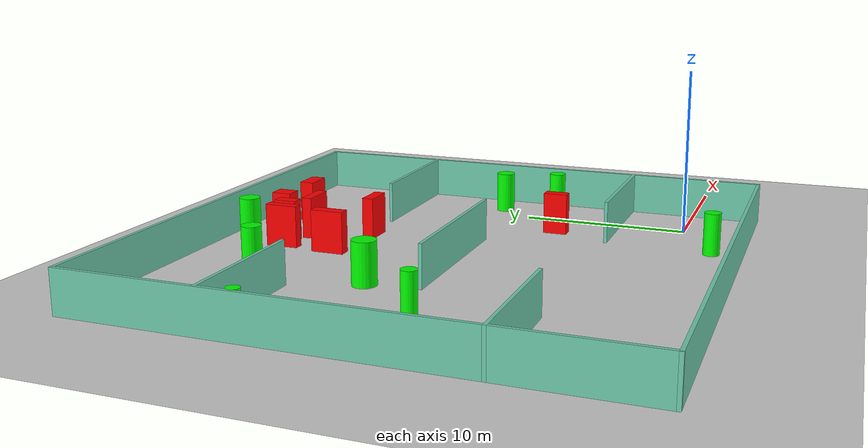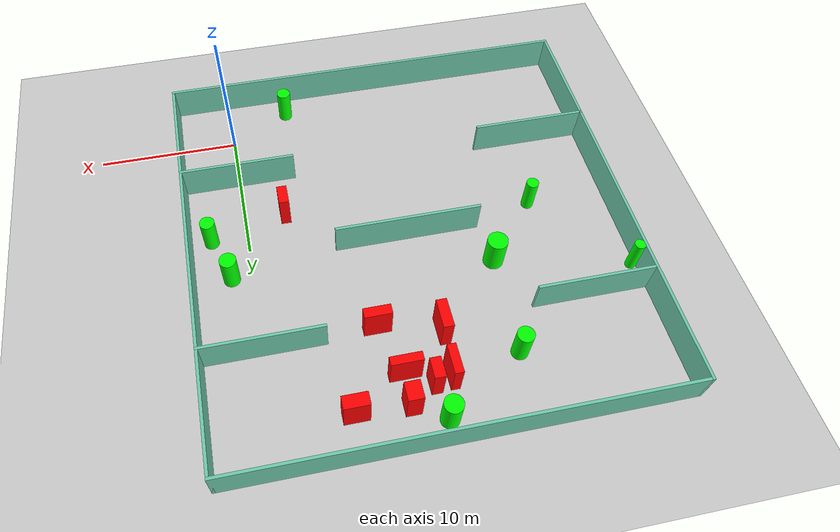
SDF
<sdf version="1.7">
 <world name="default">
  <light name="sun" type="directional">
   <pose>0 0 10 0 -0 0</pose>
   <diffuse>0.8 0.8 0.8 1</diffuse>
   <specular>0.2 0.2 0.2 1</specular>
   <attenuation>
    <range>1000</range>
    <constant>0.9</constant>
    <linear>0.01</linear>
    <quadratic>0.001</quadratic>
   </attenuation>
   <direction>-0.5 0.1 -0.9</direction>
   <spot><inner_angle>0</inner_angle><outer_angle>0</outer_angle><falloff>0</falloff></spot>
  </light>
  <model name="ground_plane">
   <static>1</static>
   <link name="link">
    <collision name="collision">
     <geometry><plane><normal>0 0 1</normal><size>100 100</size></plane></geometry>
     <surface>
      <contact><collide_bitmask>65535</collide_bitmask></contact>
      <friction><ode><mu>100</mu><mu2>50</mu2></ode></friction>
     </surface>
    </collision>
    <visual name="visual">
     <cast_shadows>0</cast_shadows>
     <geometry><plane><normal>0 0 1</normal><size>100 100</size></plane></geometry>
     <material>
      <script><uri>file://media/materials/scripts/gazebo.material</uri><name>Gazebo/Grey</name></script>
     </material>
    </visual>
   </link>
  </model>
  <gravity>0 0 -9.8</gravity>
  <magnetic_field>6e-06 2.3e-05 -4.2e-05</magnetic_field>
  <atmosphere type="adiabatic"/>
  <physics type="ode">
   <max_step_size>0.001</max_step_size>
   <real_time_factor>1</real_time_factor>
   <real_time_update_rate>1000</real_time_update_rate>
  </physics>
  <scene><ambient>0.4 0.4 0.4 1</ambient><background>0.7 0.7 0.7 1</background><shadows>1</shadows></scene>
  <spherical_coordinates>
   <surface_model>EARTH_WGS84</surface_model>
   <latitude_deg>0</latitude_deg>
   <longitude_deg>0</longitude_deg>
   <elevation>0</elevation>
   <heading_deg>0</heading_deg>
  </spherical_coordinates>
  <model name="my_base_walls">
   <link name="Wall_10">
    <collision name="Wall_10_Collision">
     <geometry><box><size>8.2 0.2 2.5</size></box></geometry>
     <pose>0 0 1.25 0 -0 0</pose>
    </collision>
    <visual name="Wall_10_Visual">
     <pose>0 0 1.25 0 -0 0</pose>
     <geometry><box><size>8.2 0.2 2.5</size></box></geometry>
     <material>
      <script><uri>file://media/materials/scripts/gazebo.material</uri><name>Gazebo/Grey</name></script>
      <ambient>0.435294 0.796078 0.67451 1</ambient>
     </material>
     <meta><layer>0</layer></meta>
    </visual>
    <pose>-11 -7 0 0 -0 0</pose>
   </link>
   <link name="Wall_12">
    <collision name="Wall_12_Collision">
     <geometry><box><size>8.2 0.2 2.5</size></box></geometry>
     <pose>0 0 1.25 0 -0 0</pose>
    </collision>
    <visual name="Wall_12_Visual">
     <pose>0 0 1.25 0 -0 0</pose>
     <geometry><box><size>8.2 0.2 2.5</size></box></geometry>
     <material>
      <script><uri>file://media/materials/scripts/gazebo.material</uri><name>Gazebo/Grey</name></script>
      <ambient>0.435294 0.796078 0.67451 1</ambient>
     </material>
     <meta><layer>0</layer></meta>
    </visual>
    <pose>-11 7 0 0 -0 0</pose>
   </link>
   <link name="Wall_14">
    <collision name="Wall_14_Collision">
     <geometry><box><size>8.2 0.2 2.5</size></box></geometry>
     <pose>0 0 1.25 0 -0 0</pose>
    </collision>
    <visual name="Wall_14_Visual">
     <pose>0 0 1.25 0 -0 0</pose>
     <geometry><box><size>8.2 0.2 2.5</size></box></geometry>
     <material>
      <script><uri>file://media/materials/scripts/gazebo.material</uri><name>Gazebo/Grey</name></script>
      <ambient>0.435294 0.796078 0.67451 1</ambient>
     </material>
     <meta><layer>0</layer></meta>
    </visual>
    <pose>11 7 0 0 -0 3.14159</pose>
   </link>
   <link name="Wall_16">
    <collision name="Wall_16_Collision">
     <geometry><box><size>10.2 0.2 2.5</size></box></geometry>
     <pose>0 0 1.25 0 -0 0</pose>
    </collision>
    <visual name="Wall_16_Visual">
     <pose>0 0 1.25 0 -0 0</pose>
     <geometry><box><size>10.2 0.2 2.5</size></box></geometry>
     <material>
      <script><uri>file://media/materials/scripts/gazebo.material</uri><name>Gazebo/Grey</name></script>
      <ambient>0.435294 0.796078 0.67451 1</ambient>
     </material>
     <meta><layer>0</layer></meta>
    </visual>
    <pose>0 0 0 0 -0 3.14159</pose>
   </link>
   <link name="Wall_2">
    <collision name="Wall_2_Collision">
     <geometry><box><size>30.2 0.2 2.5</size></box></geometry>
     <pose>0 0 1.25 0 -0 0</pose>
    </collision>
    <visual name="Wall_2_Visual">
     <pose>0 0 1.25 0 -0 0</pose>
     <geometry><box><size>30.2 0.2 2.5</size></box></geometry>
     <material>
      <script><uri>file://media/materials/scripts/gazebo.material</uri><name>Gazebo/Grey</name></script>
      <ambient>0.435294 0.796078 0.67451 1</ambient>
     </material>
     <meta><layer>0</layer></meta>
    </visual>
    <pose>0 -15 0 0 -0 3.14159</pose>
   </link>
   <link name="Wall_3">
    <collision name="Wall_3_Collision">
     <geometry><box><size>30.2 0.2 2.5</size></box></geometry>
     <pose>0 0 1.25 0 -0 0</pose>
    </collision>
    <visual name="Wall_3_Visual">
     <pose>0 0 1.25 0 -0 0</pose>
     <geometry><box><size>30.2 0.2 2.5</size></box></geometry>
     <material>
      <script><uri>file://media/materials/scripts/gazebo.material</uri><name>Gazebo/Grey</name></script>
      <ambient>0.435294 0.796078 0.67451 1</ambient>
     </material>
     <meta><layer>0</layer></meta>
    </visual>
    <pose>-15 0 0 0 -0 1.5708</pose>
   </link>
   <link name="Wall_4">
    <collision name="Wall_4_Collision">
     <geometry><box><size>30.2 0.2 2.5</size></box></geometry>
     <pose>0 0 1.25 0 -0 0</pose>
    </collision>
    <visual name="Wall_4_Visual">
     <pose>0 0 1.25 0 -0 0</pose>
     <geometry><box><size>30.2 0.2 2.5</size></box></geometry>
     <material>
      <script><uri>file://media/materials/scripts/gazebo.material</uri><name>Gazebo/Grey</name></script>
      <ambient>0.435294 0.796078 0.67451 1</ambient>
     </material>
     <meta><layer>0</layer></meta>
    </visual>
    <pose>0 15 0 0 -0 0</pose>
   </link>
   <link name="Wall_6">
    <collision name="Wall_6_Collision">
     <geometry><box><size>30.2 0.2 2.5</size></box></geometry>
     <pose>0 0 1.25 0 -0 0</pose>
    </collision>
    <visual name="Wall_6_Visual">
     <pose>0 0 1.25 0 -0 0</pose>
     <geometry><box><size>30.2 0.2 2.5</size></box></geometry>
     <material>
      <script><uri>file://media/materials/scripts/gazebo.material</uri><name>Gazebo/Grey</name></script>
      <ambient>0.435294 0.796078 0.67451 1</ambient>
     </material>
     <meta><layer>0</layer></meta>
    </visual>
    <pose>15 0 0 0 -0 1.5708</pose>
   </link>
   <link name="Wall_8">
    <collision name="Wall_8_Collision">
     <geometry><box><size>8.2 0.2 2.5</size></box></geometry>
     <pose>0 0 1.25 0 -0 0</pose>
    </collision>
    <visual name="Wall_8_Visual">
     <pose>0 0 1.25 0 -0 0</pose>
     <geometry><box><size>8.2 0.2 2.5</size></box></geometry>
     <material>
      <script><uri>file://media/materials/scripts/gazebo.material</uri><name>Gazebo/Grey</name></script>
      <ambient>0.435294 0.796078 0.67451 1</ambient>
     </material>
     <meta><layer>0</layer></meta>
    </visual>
    <pose>11 -7 0 0 -0 3.14159</pose>
   </link>
   <static>1</static>
   <pose>-11 11 0 0 -0 0</pose>
  </model>
  <model name="cylinder1">
   <static>1</static>
   <link name="link">
    <inertial>
     <mass>1</mass>
     <inertia><ixx>0.5</ixx><ixy>0</ixy><ixz>0</ixz><iyy>0.5</iyy><iyz>0</iyz><izz>1</izz></inertia>
    </inertial>
    <collision name="collision">
     <geometry><cylinder><radius>0.5697552768248226</radius><length>2.5</length></cylinder></geometry>
    </collision>
    <visual name="visual">
     <geometry><cylinder><radius>0.5697552768248226</radius><length>2.5</length></cylinder></geometry>
     <material>
      <ambient>0 1 0 1</ambient>
      <diffuse>0 1 0 1</diffuse>
      <specular>0.1 0.1 0.1 1</specular>
      <emissive>0 0 0 0</emissive>
     </material>
    </visual>
   </link>
   <pose>-16.012387829087643 21.0476527169841 1.25 0 0 0</pose>
  </model>
  <model name="cylinder2">
   <static>1</static>
   <link name="link">
    <inertial>
     <mass>1</mass>
     <inertia><ixx>0.5</ixx><ixy>0</ixy><ixz>0</ixz><iyy>0.5</iyy><iyz>0</iyz><izz>1</izz></inertia>
    </inertial>
    <collision name="collision">
     <geometry><cylinder><radius>0.6996397560245577</radius><length>2.5</length></cylinder></geometry>
    </collision>
    <visual name="visual">
     <geometry><cylinder><radius>0.6996397560245577</radius><length>2.5</length></cylinder></geometry>
     <material>
      <ambient>0 1 0 1</ambient>
      <diffuse>0 1 0 1</diffuse>
      <specular>0.1 0.1 0.1 1</specular>
      <emissive>0 0 0 0</emissive>
     </material>
    </visual>
   </link>
   <pose>-16.39065596203811 14.047836280175076 1.25 0 0 0</pose>
  </model>
  <model name="cylinder3">
   <static>1</static>
   <link name="link">
    <inertial>
     <mass>1</mass>
     <inertia><ixx>0.5</ixx><ixy>0</ixy><ixz>0</ixz><iyy>0.5</iyy><iyz>0</iyz><izz>1</izz></inertia>
    </inertial>
    <collision name="collision">
     <geometry><cylinder><radius>0.5121124382956566</radius><length>2.5</length></cylinder></geometry>
    </collision>
    <visual name="visual">
     <geometry><cylinder><radius>0.5121124382956566</radius><length>2.5</length></cylinder></geometry>
     <material>
      <ambient>0 1 0 1</ambient>
      <diffuse>0 1 0 1</diffuse>
      <specular>0.1 0.1 0.1 1</specular>
      <emissive>0 0 0 0</emissive>
     </material>
    </visual>
   </link>
   <pose>2.533792466424643 8.797635092813083 1.25 0 0 0</pose>
  </model>
  <model name="cylinder4">
   <static>1</static>
   <link name="link">
    <inertial>
     <mass>1</mass>
     <inertia><ixx>0.5</ixx><ixy>0</ixy><ixz>0</ixz><iyy>0.5</iyy><iyz>0</iyz><izz>1</izz></inertia>
    </inertial>
    <collision name="collision">
     <geometry><cylinder><radius>0.3663153109588181</radius><length>2.5</length></cylinder></geometry>
    </collision>
    <visual name="visual">
     <geometry><cylinder><radius>0.3663153109588181</radius><length>2.5</length></cylinder></geometry>
     <material>
      <ambient>0 1 0 1</ambient>
      <diffuse>0 1 0 1</diffuse>
      <specular>0.1 0.1 0.1 1</specular>
      <emissive>0 0 0 0</emissive>
     </material>
    </visual>
   </link>
   <pose>-25.5932170502421 16.189039652167196 1.25 0 0 0</pose>
  </model>
  <model name="cylinder5">
   <static>1</static>
   <link name="link">
    <inertial>
     <mass>1</mass>
     <inertia><ixx>0.5</ixx><ixy>0</ixy><ixz>0</ixz><iyy>0.5</iyy><iyz>0</iyz><izz>1</izz></inertia>
    </inertial>
    <collision name="collision">
     <geometry><cylinder><radius>0.4868240590060786</radius><length>2.5</length></cylinder></geometry>
    </collision>
    <visual name="visual">
     <geometry><cylinder><radius>0.4868240590060786</radius><length>2.5</length></cylinder></geometry>
     <material>
      <ambient>0 1 0 1</ambient>
      <diffuse>0 1 0 1</diffuse>
      <specular>0.1 0.1 0.1 1</specular>
      <emissive>0 0 0 0</emissive>
     </material>
    </visual>
   </link>
   <pose>-4.282749058181082 -2.2709903022199387 1.25 0 0 0</pose>
  </model>
  <model name="cylinder6">
   <static>1</static>
   <link name="link">
    <inertial>
     <mass>1</mass>
     <inertia><ixx>0.5</ixx><ixy>0</ixy><ixz>0</ixz><iyy>0.5</iyy><iyz>0</iyz><izz>1</izz></inertia>
    </inertial>
    <collision name="collision">
     <geometry><cylinder><radius>0.5726152567881626</radius><length>2.5</length></cylinder></geometry>
    </collision>
    <visual name="visual">
     <geometry><cylinder><radius>0.5726152567881626</radius><length>2.5</length></cylinder></geometry>
     <material>
      <ambient>0 1 0 1</ambient>
      <diffuse>0 1 0 1</diffuse>
      <specular>0.1 0.1 0.1 1</specular>
      <emissive>0 0 0 0</emissive>
     </material>
    </visual>
   </link>
   <pose>1.4625068918901967 12.058656911893184 1.25 0 0 0</pose>
  </model>
  <model name="cylinder7">
   <static>1</static>
   <link name="link">
    <inertial>
     <mass>1</mass>
     <inertia><ixx>0.5</ixx><ixy>0</ixy><ixz>0</ixz><iyy>0.5</iyy><iyz>0</iyz><izz>1</izz></inertia>
    </inertial>
    <collision name="collision">
     <geometry><cylinder><radius>0.6266596622367244</radius><length>2.5</length></cylinder></geometry>
    </collision>
    <visual name="visual">
     <geometry><cylinder><radius>0.6266596622367244</radius><length>2.5</length></cylinder></geometry>
     <material>
      <ambient>0 1 0 1</ambient>
      <diffuse>0 1 0 1</diffuse>
      <specular>0.1 0.1 0.1 1</specular>
      <emissive>0 0 0 0</emissive>
     </material>
    </visual>
   </link>
   <pose>-10.466379919611065 24.502822776948353 1.25 0 0 0</pose>
  </model>
  <model name="cylinder8">
   <static>1</static>
   <link name="link">
    <inertial>
     <mass>1</mass>
     <inertia><ixx>0.5</ixx><ixy>0</ixy><ixz>0</ixz><iyy>0.5</iyy><iyz>0</iyz><izz>1</izz></inertia>
    </inertial>
    <collision name="collision">
     <geometry><cylinder><radius>0.4290988726204341</radius><length>2.5</length></cylinder></geometry>
    </collision>
    <visual name="visual">
     <geometry><cylinder><radius>0.4290988726204341</radius><length>2.5</length></cylinder></geometry>
     <material>
      <ambient>0 1 0 1</ambient>
      <diffuse>0 1 0 1</diffuse>
      <specular>0.1 0.1 0.1 1</specular>
      <emissive>0 0 0 0</emissive>
     </material>
    </visual>
   </link>
   <pose>-20.25636254166997 9.831743745695153 1.25 0 0 0</pose>
  </model>
  <model name="box1">
   <static>1</static>
   <link name="link">
    <inertial>
     <mass>1</mass>
     <inertia><ixx>0.083</ixx><ixy>0</ixy><ixz>0</ixz><iyy>0.083</iyy><iyz>0</iyz><izz>0.083</izz></inertia>
    </inertial>
    <collision name="collision">
     <geometry><box><size>1.836029928814949 0.6755975082808556 2.5</size></box></geometry>
    </collision>
    <visual name="visual">
     <geometry><box><size>1.836029928814949 0.6755975082808556 2.5</size></box></geometry>
     <material>
      <ambient>1 0 0 1</ambient>
      <diffuse>1 0 0 1</diffuse>
      <specular>0.1 0.1 0.1 1</specular>
      <emissive>0 0 0 0</emissive>
     </material>
    </visual>
    <sensor name="my_contact" type="contact">
     <contact><collision>box_collision</collision><topic>__default_topic__</topic></contact>
    </sensor>
   </link>
   <pose>-7.402846517458393 17.66246074881594 1.25 0 0 0</pose>
  </model>
  <model name="box2">
   <static>1</static>
   <link name="link">
    <inertial>
     <mass>1</mass>
     <inertia><ixx>0.083</ixx><ixy>0</ixy><ixz>0</ixz><iyy>0.083</iyy><iyz>0</iyz><izz>0.083</izz></inertia>
    </inertial>
    <collision name="collision">
     <geometry><box><size>1.024137073419284 1.2191025117394882 2.5</size></box></geometry>
    </collision>
    <visual name="visual">
     <geometry><box><size>1.024137073419284 1.2191025117394882 2.5</size></box></geometry>
     <material>
      <ambient>1 0 0 1</ambient>
      <diffuse>1 0 0 1</diffuse>
      <specular>0.1 0.1 0.1 1</specular>
      <emissive>0 0 0 0</emissive>
     </material>
    </visual>
    <sensor name="my_contact" type="contact">
     <contact><collision>box_collision</collision><topic>__default_topic__</topic></contact>
    </sensor>
   </link>
   <pose>-8.401046711927743 23.235763911874958 1.25 0 0 0</pose>
  </model>
  <model name="box3">
   <static>1</static>
   <link name="link">
    <inertial>
     <mass>1</mass>
     <inertia><ixx>0.083</ixx><ixy>0</ixy><ixz>0</ixz><iyy>0.083</iyy><iyz>0</iyz><izz>0.083</izz></inertia>
    </inertial>
    <collision name="collision">
     <geometry><box><size>0.5881357565848673 1.9662478840722912 2.5</size></box></geometry>
    </collision>
    <visual name="visual">
     <geometry><box><size>0.5881357565848673 1.9662478840722912 2.5</size></box></geometry>
     <material>
      <ambient>1 0 0 1</ambient>
      <diffuse>1 0 0 1</diffuse>
      <specular>0.1 0.1 0.1 1</specular>
      <emissive>0 0 0 0</emissive>
     </material>
    </visual>
    <sensor name="my_contact" type="contact">
     <contact><collision>box_collision</collision><topic>__default_topic__</topic></contact>
    </sensor>
   </link>
   <pose>-11.325429753365487 21.730922913584394 1.25 0 0 0</pose>
  </model>
  <model name="box4">
   <static>1</static>
   <link name="link">
    <inertial>
     <mass>1</mass>
     <inertia><ixx>0.083</ixx><ixy>0</ixy><ixz>0</ixz><iyy>0.083</iyy><iyz>0</iyz><izz>0.083</izz></inertia>
    </inertial>
    <collision name="collision">
     <geometry><box><size>2.0863209925831776 0.584102434175571 2.5</size></box></geometry>
    </collision>
    <visual name="visual">
     <geometry><box><size>2.0863209925831776 0.584102434175571 2.5</size></box></geometry>
     <material>
      <ambient>1 0 0 1</ambient>
      <diffuse>1 0 0 1</diffuse>
      <specular>0.1 0.1 0.1 1</specular>
      <emissive>0 0 0 0</emissive>
     </material>
    </visual>
    <sensor name="my_contact" type="contact">
     <contact><collision>box_collision</collision><topic>__default_topic__</topic></contact>
    </sensor>
   </link>
   <pose>-8.437337550793654 21.168733675797284 1.25 0 0 0</pose>
  </model>
  <model name="box5">
   <static>1</static>
   <link name="link">
    <inertial>
     <mass>1</mass>
     <inertia><ixx>0.083</ixx><ixy>0</ixy><ixz>0</ixz><iyy>0.083</iyy><iyz>0</iyz><izz>0.083</izz></inertia>
    </inertial>
    <collision name="collision">
     <geometry><box><size>1.678782429494468 0.8688464935554072 2.5</size></box></geometry>
    </collision>
    <visual name="visual">
     <geometry><box><size>1.678782429494468 0.8688464935554072 2.5</size></box></geometry>
     <material>
      <ambient>1 0 0 1</ambient>
      <diffuse>1 0 0 1</diffuse>
      <specular>0.1 0.1 0.1 1</specular>
      <emissive>0 0 0 0</emissive>
     </material>
    </visual>
    <sensor name="my_contact" type="contact">
     <contact><collision>box_collision</collision><topic>__default_topic__</topic></contact>
    </sensor>
   </link>
   <pose>-4.907797731469936 23.18234059905032 1.25 0 0 0</pose>
  </model>
  <model name="box6">
   <static>1</static>
   <link name="link">
    <inertial>
     <mass>1</mass>
     <inertia><ixx>0.083</ixx><ixy>0</ixy><ixz>0</ixz><iyy>0.083</iyy><iyz>0</iyz><izz>0.083</izz></inertia>
    </inertial>
    <collision name="collision">
     <geometry><box><size>0.7265683290341538 1.3570991167440083 2.5</size></box></geometry>
    </collision>
    <visual name="visual">
     <geometry><box><size>0.7265683290341538 1.3570991167440083 2.5</size></box></geometry>
     <material>
      <ambient>1 0 0 1</ambient>
      <diffuse>1 0 0 1</diffuse>
      <specular>0.1 0.1 0.1 1</specular>
      <emissive>0 0 0 0</emissive>
     </material>
    </visual>
    <sensor name="my_contact" type="contact">
     <contact><collision>box_collision</collision><topic>__default_topic__</topic></contact>
    </sensor>
   </link>
   <pose>-10.135330252945463 22.09183824880246 1.25 0 0 0</pose>
  </model>
  <model name="box7">
   <static>1</static>
   <link name="link">
    <inertial>
     <mass>1</mass>
     <inertia><ixx>0.083</ixx><ixy>0</ixy><ixz>0</ixz><iyy>0.083</iyy><iyz>0</iyz><izz>0.083</izz></inertia>
    </inertial>
    <collision name="collision">
     <geometry><box><size>0.6915265959467934 1.4265688616772294 2.5</size></box></geometry>
    </collision>
    <visual name="visual">
     <geometry><box><size>0.6915265959467934 1.4265688616772294 2.5</size></box></geometry>
     <material>
      <ambient>1 0 0 1</ambient>
      <diffuse>1 0 0 1</diffuse>
      <specular>0.1 0.1 0.1 1</specular>
      <emissive>0 0 0 0</emissive>
     </material>
    </visual>
    <sensor name="my_contact" type="contact">
     <contact><collision>box_collision</collision><topic>__default_topic__</topic></contact>
    </sensor>
   </link>
   <pose>-2.8497966942581776 7.379087688111943 1.25 0 0 0</pose>
  </model>
  <model name="box8">
   <static>1</static>
   <link name="link">
    <inertial>
     <mass>1</mass>
     <inertia><ixx>0.083</ixx><ixy>0</ixy><ixz>0</ixz><iyy>0.083</iyy><iyz>0</iyz><izz>0.083</izz></inertia>
    </inertial>
    <collision name="collision">
     <geometry><box><size>0.7081445849774868 1.9794050202707891 2.5</size></box></geometry>
    </collision>
    <visual name="visual">
     <geometry><box><size>0.7081445849774868 1.9794050202707891 2.5</size></box></geometry>
     <material>
      <ambient>1 0 0 1</ambient>
      <diffuse>1 0 0 1</diffuse>
      <specular>0.1 0.1 0.1 1</specular>
      <emissive>0 0 0 0</emissive>
     </material>
    </visual>
    <sensor name="my_contact" type="contact">
     <contact><collision>box_collision</collision><topic>__default_topic__</topic></contact>
    </sensor>
   </link>
   <pose>-11.517561262042648 18.615015736282146 1.25 0 0 0</pose>
  </model>
 </world>
</sdf>
